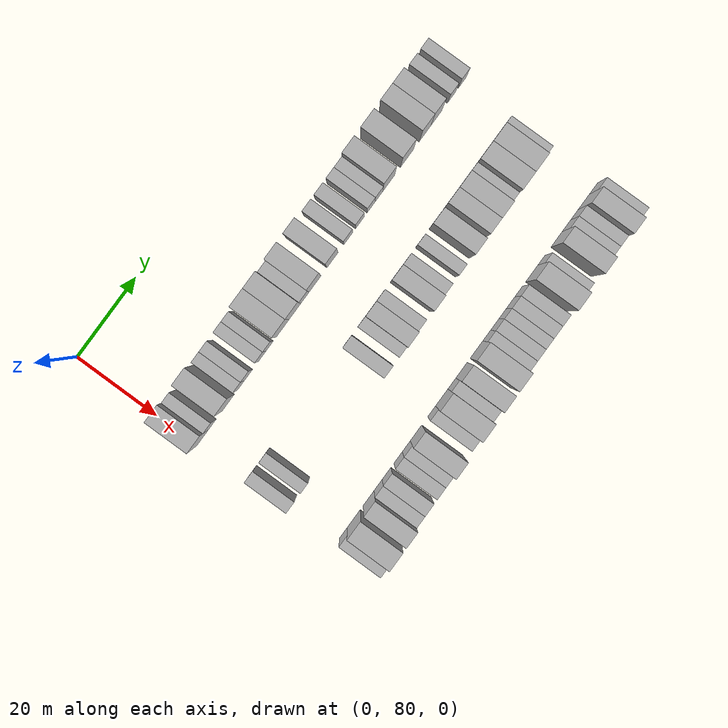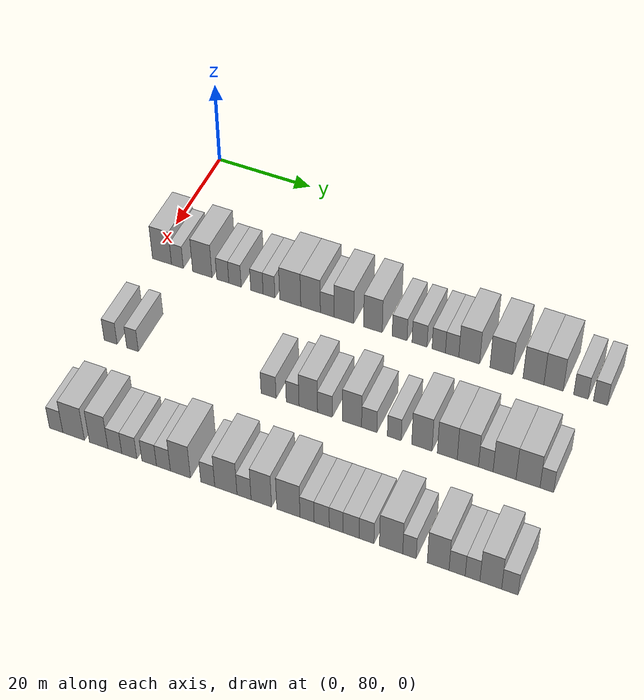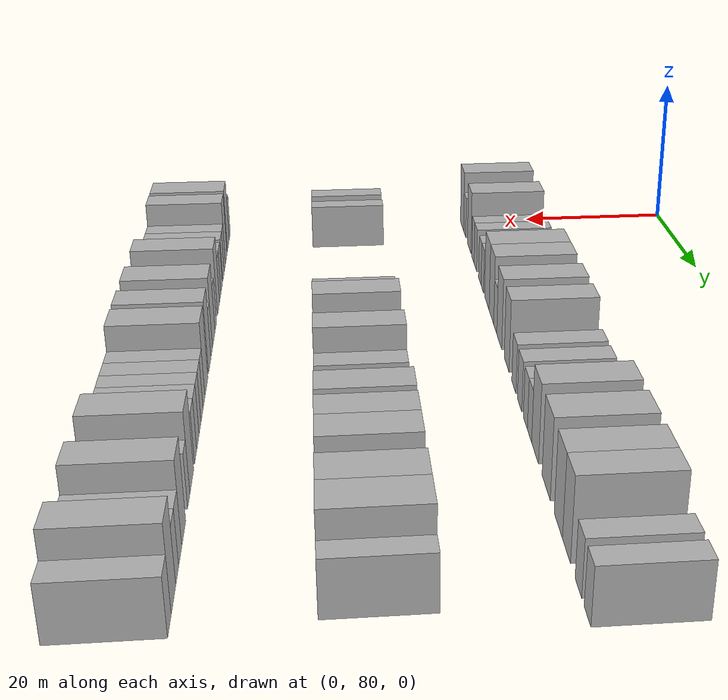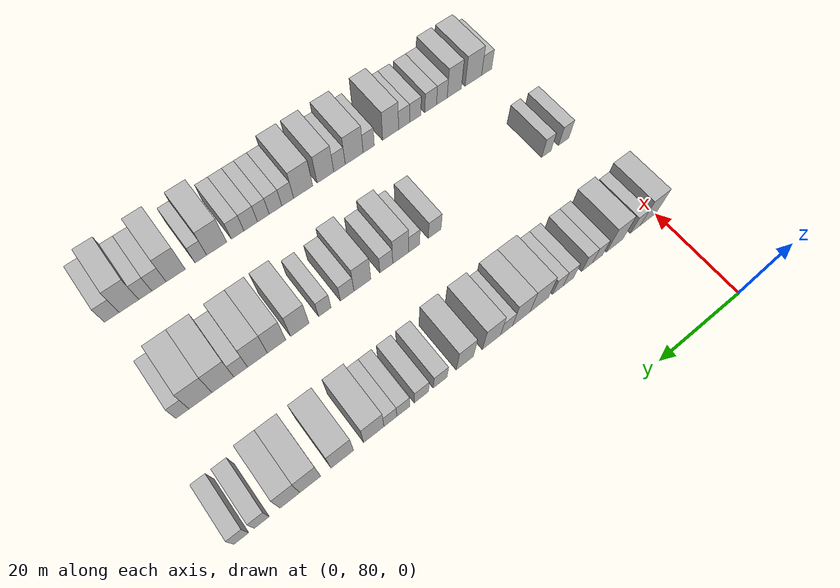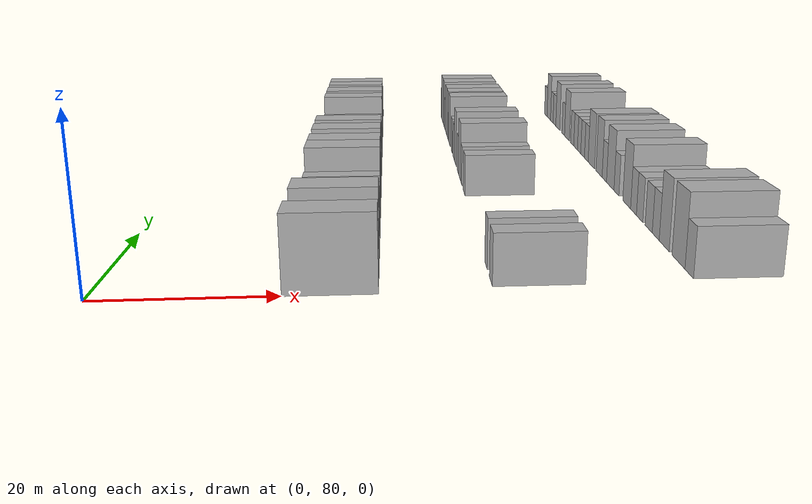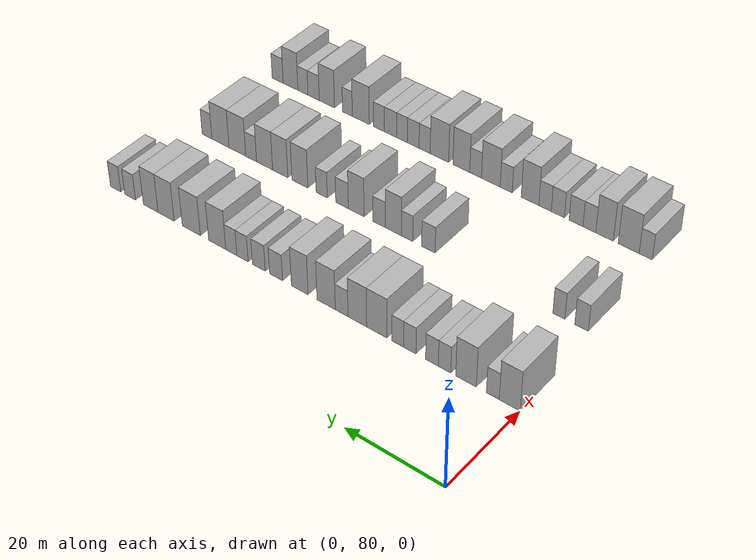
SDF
<sdf version="1.6">
 <world name="default">
  <model name="building_87">
   <static>1</static>
   <pose>25.0000 81.9876 0 0.000000 0.000000 0.000000</pose>
   <link name="link">
    <pose>0 0 4.50 0 0 0</pose>
    <collision name="collision"><geometry><box><size>10.0000 4.1131 9.0000</size></box></geometry></collision>
    <visual name="visual">
     <cast_shadows>0</cast_shadows>
     <geometry><box><size>10.0000 4.1131 9.0000</size></box></geometry>
     <material>
      <script>
       <uri>model://HANNAS_wall/materials/scripts</uri>
       <uri>model://HANNAS_wall/materials/textures</uri>
       <name>vrc/HANNAS_wall</name>
      </script>
     </material>
    </visual>
   </link>
  </model>
  <model name="building_88">
   <static>1</static>
   <pose>25.0000 85.3136 0 0.000000 0.000000 0.000000</pose>
   <link name="link">
    <pose>0 0 3.00 0 0 0</pose>
    <collision name="collision"><geometry><box><size>10.0000 2.5389 6.0000</size></box></geometry></collision>
    <visual name="visual">
     <cast_shadows>0</cast_shadows>
     <geometry><box><size>10.0000 2.5389 6.0000</size></box></geometry>
     <material>
      <script>
       <uri>model://HANNAS_wall/materials/scripts</uri>
       <uri>model://HANNAS_wall/materials/textures</uri>
       <name>vrc/HANNAS_wall</name>
      </script>
     </material>
    </visual>
   </link>
  </model>
  <model name="building_89">
   <static>1</static>
   <pose>25.0000 90.6609 0 0.000000 0.000000 0.000000</pose>
   <link name="link">
    <pose>0 0 4.50 0 0 0</pose>
    <collision name="collision"><geometry><box><size>10.0000 4.1556 9.0000</size></box></geometry></collision>
    <visual name="visual">
     <cast_shadows>0</cast_shadows>
     <geometry><box><size>10.0000 4.1556 9.0000</size></box></geometry>
     <material>
      <script>
       <uri>model://HANNAS_wall/materials/scripts</uri>
       <uri>model://HANNAS_wall/materials/textures</uri>
       <name>vrc/HANNAS_wall</name>
      </script>
     </material>
    </visual>
   </link>
  </model>
  <model name="building_90">
   <static>1</static>
   <pose>25.0000 95.0164 0 0.000000 0.000000 0.000000</pose>
   <link name="link">
    <pose>0 0 3.00 0 0 0</pose>
    <collision name="collision"><geometry><box><size>10.0000 2.5554 6.0000</size></box></geometry></collision>
    <visual name="visual">
     <cast_shadows>0</cast_shadows>
     <geometry><box><size>10.0000 2.5554 6.0000</size></box></geometry>
     <material>
      <script>
       <uri>model://HANNAS_wall/materials/scripts</uri>
       <uri>model://HANNAS_wall/materials/textures</uri>
       <name>vrc/HANNAS_wall</name>
      </script>
     </material>
    </visual>
   </link>
  </model>
  <model name="building_91">
   <static>1</static>
   <pose>25.0000 97.6028 0 0.000000 0.000000 0.000000</pose>
   <link name="link">
    <pose>0 0 3.00 0 0 0</pose>
    <collision name="collision"><geometry><box><size>10.0000 2.6174 6.0000</size></box></geometry></collision>
    <visual name="visual">
     <cast_shadows>0</cast_shadows>
     <geometry><box><size>10.0000 2.6174 6.0000</size></box></geometry>
     <material>
      <script>
       <uri>model://HANNAS_wall/materials/scripts</uri>
       <uri>model://HANNAS_wall/materials/textures</uri>
       <name>vrc/HANNAS_wall</name>
      </script>
     </material>
    </visual>
   </link>
  </model>
  <model name="building_92">
   <static>1</static>
   <pose>25.0000 102.2139 0 0.000000 0.000000 0.000000</pose>
   <link name="link">
    <pose>0 0 3.00 0 0 0</pose>
    <collision name="collision"><geometry><box><size>10.0000 2.6048 6.0000</size></box></geometry></collision>
    <visual name="visual">
     <cast_shadows>0</cast_shadows>
     <geometry><box><size>10.0000 2.6048 6.0000</size></box></geometry>
     <material>
      <script>
       <uri>model://HANNAS_wall/materials/scripts</uri>
       <uri>model://HANNAS_wall/materials/textures</uri>
       <name>vrc/HANNAS_wall</name>
      </script>
     </material>
    </visual>
   </link>
  </model>
  <model name="building_93">
   <static>1</static>
   <pose>25.0000 104.7517 0 0.000000 0.000000 0.000000</pose>
   <link name="link">
    <pose>0 0 3.00 0 0 0</pose>
    <collision name="collision"><geometry><box><size>10.0000 2.4708 6.0000</size></box></geometry></collision>
    <visual name="visual">
     <cast_shadows>0</cast_shadows>
     <geometry><box><size>10.0000 2.4708 6.0000</size></box></geometry>
     <material>
      <script>
       <uri>model://HANNAS_wall/materials/scripts</uri>
       <uri>model://HANNAS_wall/materials/textures</uri>
       <name>vrc/HANNAS_wall</name>
      </script>
     </material>
    </visual>
   </link>
  </model>
  <model name="building_94">
   <static>1</static>
   <pose>25.0000 109.1698 0 0.000000 0.000000 0.000000</pose>
   <link name="link">
    <pose>0 0 4.50 0 0 0</pose>
    <collision name="collision"><geometry><box><size>10.0000 4.3656 9.0000</size></box></geometry></collision>
    <visual name="visual">
     <cast_shadows>0</cast_shadows>
     <geometry><box><size>10.0000 4.3656 9.0000</size></box></geometry>
     <material>
      <script>
       <uri>model://HANNAS_wall/materials/scripts</uri>
       <uri>model://HANNAS_wall/materials/textures</uri>
       <name>vrc/HANNAS_wall</name>
      </script>
     </material>
    </visual>
   </link>
  </model>
  <model name="building_95">
   <static>1</static>
   <pose>25.0000 113.3726 0 0.000000 0.000000 0.000000</pose>
   <link name="link">
    <pose>0 0 4.50 0 0 0</pose>
    <collision name="collision"><geometry><box><size>10.0000 4.0399 9.0000</size></box></geometry></collision>
    <visual name="visual">
     <cast_shadows>0</cast_shadows>
     <geometry><box><size>10.0000 4.0399 9.0000</size></box></geometry>
     <material>
      <script>
       <uri>model://HANNAS_wall/materials/scripts</uri>
       <uri>model://HANNAS_wall/materials/textures</uri>
       <name>vrc/HANNAS_wall</name>
      </script>
     </material>
    </visual>
   </link>
  </model>
  <model name="building_96">
   <static>1</static>
   <pose>25.0000 116.7784 0 0.000000 0.000000 0.000000</pose>
   <link name="link">
    <pose>0 0 3.00 0 0 0</pose>
    <collision name="collision"><geometry><box><size>10.0000 2.7718 6.0000</size></box></geometry></collision>
    <visual name="visual">
     <cast_shadows>0</cast_shadows>
     <geometry><box><size>10.0000 2.7718 6.0000</size></box></geometry>
     <material>
      <script>
       <uri>model://HANNAS_wall/materials/scripts</uri>
       <uri>model://HANNAS_wall/materials/textures</uri>
       <name>vrc/HANNAS_wall</name>
      </script>
     </material>
    </visual>
   </link>
  </model>
  <model name="building_97">
   <static>1</static>
   <pose>25.0000 120.1962 0 0.000000 0.000000 0.000000</pose>
   <link name="link">
    <pose>0 0 4.50 0 0 0</pose>
    <collision name="collision"><geometry><box><size>10.0000 4.0636 9.0000</size></box></geometry></collision>
    <visual name="visual">
     <cast_shadows>0</cast_shadows>
     <geometry><box><size>10.0000 4.0636 9.0000</size></box></geometry>
     <material>
      <script>
       <uri>model://HANNAS_wall/materials/scripts</uri>
       <uri>model://HANNAS_wall/materials/textures</uri>
       <name>vrc/HANNAS_wall</name>
      </script>
     </material>
    </visual>
   </link>
  </model>
  <model name="building_98">
   <static>1</static>
   <pose>25.0000 126.1084 0 0.000000 0.000000 0.000000</pose>
   <link name="link">
    <pose>0 0 4.50 0 0 0</pose>
    <collision name="collision"><geometry><box><size>10.0000 3.7609 9.0000</size></box></geometry></collision>
    <visual name="visual">
     <cast_shadows>0</cast_shadows>
     <geometry><box><size>10.0000 3.7609 9.0000</size></box></geometry>
     <material>
      <script>
       <uri>model://HANNAS_wall/materials/scripts</uri>
       <uri>model://HANNAS_wall/materials/textures</uri>
       <name>vrc/HANNAS_wall</name>
      </script>
     </material>
    </visual>
   </link>
  </model>
  <model name="building_99">
   <static>1</static>
   <pose>25.0000 131.4782 0 0.000000 0.000000 0.000000</pose>
   <link name="link">
    <pose>0 0 3.00 0 0 0</pose>
    <collision name="collision"><geometry><box><size>10.0000 2.9786 6.0000</size></box></geometry></collision>
    <visual name="visual">
     <cast_shadows>0</cast_shadows>
     <geometry><box><size>10.0000 2.9786 6.0000</size></box></geometry>
     <material>
      <script>
       <uri>model://HANNAS_wall/materials/scripts</uri>
       <uri>model://HANNAS_wall/materials/textures</uri>
       <name>vrc/HANNAS_wall</name>
      </script>
     </material>
    </visual>
   </link>
  </model>
  <model name="building_100">
   <static>1</static>
   <pose>25.0000 135.4568 0 0.000000 0.000000 0.000000</pose>
   <link name="link">
    <pose>0 0 3.00 0 0 0</pose>
    <collision name="collision"><geometry><box><size>10.0000 2.9786 6.0000</size></box></geometry></collision>
    <visual name="visual">
     <cast_shadows>0</cast_shadows>
     <geometry><box><size>10.0000 2.9786 6.0000</size></box></geometry>
     <material>
      <script>
       <uri>model://HANNAS_wall/materials/scripts</uri>
       <uri>model://HANNAS_wall/materials/textures</uri>
       <name>vrc/HANNAS_wall</name>
      </script>
     </material>
    </visual>
   </link>
  </model>
  <model name="building_101">
   <static>1</static>
   <pose>25.0000 139.2723 0 0.000000 0.000000 0.000000</pose>
   <link name="link">
    <pose>0 0 3.00 0 0 0</pose>
    <collision name="collision"><geometry><box><size>10.0000 2.6524 6.0000</size></box></geometry></collision>
    <visual name="visual">
     <cast_shadows>0</cast_shadows>
     <geometry><box><size>10.0000 2.6524 6.0000</size></box></geometry>
     <material>
      <script>
       <uri>model://HANNAS_wall/materials/scripts</uri>
       <uri>model://HANNAS_wall/materials/textures</uri>
       <name>vrc/HANNAS_wall</name>
      </script>
     </material>
    </visual>
   </link>
  </model>
  <model name="building_102">
   <static>1</static>
   <pose>25.0000 141.9188 0 0.000000 0.000000 0.000000</pose>
   <link name="link">
    <pose>0 0 3.00 0 0 0</pose>
    <collision name="collision"><geometry><box><size>10.0000 2.6406 6.0000</size></box></geometry></collision>
    <visual name="visual">
     <cast_shadows>0</cast_shadows>
     <geometry><box><size>10.0000 2.6406 6.0000</size></box></geometry>
     <material>
      <script>
       <uri>model://HANNAS_wall/materials/scripts</uri>
       <uri>model://HANNAS_wall/materials/textures</uri>
       <name>vrc/HANNAS_wall</name>
      </script>
     </material>
    </visual>
   </link>
  </model>
  <model name="building_103">
   <static>1</static>
   <pose>25.0000 145.2824 0 0.000000 0.000000 0.000000</pose>
   <link name="link">
    <pose>0 0 4.50 0 0 0</pose>
    <collision name="collision"><geometry><box><size>10.0000 4.0866 9.0000</size></box></geometry></collision>
    <visual name="visual">
     <cast_shadows>0</cast_shadows>
     <geometry><box><size>10.0000 4.0866 9.0000</size></box></geometry>
     <material>
      <script>
       <uri>model://HANNAS_wall/materials/scripts</uri>
       <uri>model://HANNAS_wall/materials/textures</uri>
       <name>vrc/HANNAS_wall</name>
      </script>
     </material>
    </visual>
   </link>
  </model>
  <model name="building_104">
   <static>1</static>
   <pose>25.0000 151.5386 0 0.000000 0.000000 0.000000</pose>
   <link name="link">
    <pose>0 0 4.50 0 0 0</pose>
    <collision name="collision"><geometry><box><size>10.0000 4.4258 9.0000</size></box></geometry></collision>
    <visual name="visual">
     <cast_shadows>0</cast_shadows>
     <geometry><box><size>10.0000 4.4258 9.0000</size></box></geometry>
     <material>
      <script>
       <uri>model://HANNAS_wall/materials/scripts</uri>
       <uri>model://HANNAS_wall/materials/textures</uri>
       <name>vrc/HANNAS_wall</name>
      </script>
     </material>
    </visual>
   </link>
  </model>
  <model name="building_105">
   <static>1</static>
   <pose>25.0000 157.7581 0 0.000000 0.000000 0.000000</pose>
   <link name="link">
    <pose>0 0 4.50 0 0 0</pose>
    <collision name="collision"><geometry><box><size>10.0000 4.0133 9.0000</size></box></geometry></collision>
    <visual name="visual">
     <cast_shadows>0</cast_shadows>
     <geometry><box><size>10.0000 4.0133 9.0000</size></box></geometry>
     <material>
      <script>
       <uri>model://HANNAS_wall/materials/scripts</uri>
       <uri>model://HANNAS_wall/materials/textures</uri>
       <name>vrc/HANNAS_wall</name>
      </script>
     </material>
    </visual>
   </link>
  </model>
  <model name="building_106">
   <static>1</static>
   <pose>25.0000 161.6073 0 0.000000 0.000000 0.000000</pose>
   <link name="link">
    <pose>0 0 4.50 0 0 0</pose>
    <collision name="collision"><geometry><box><size>10.0000 3.6850 9.0000</size></box></geometry></collision>
    <visual name="visual">
     <cast_shadows>0</cast_shadows>
     <geometry><box><size>10.0000 3.6850 9.0000</size></box></geometry>
     <material>
      <script>
       <uri>model://HANNAS_wall/materials/scripts</uri>
       <uri>model://HANNAS_wall/materials/textures</uri>
       <name>vrc/HANNAS_wall</name>
      </script>
     </material>
    </visual>
   </link>
  </model>
  <model name="building_107">
   <static>1</static>
   <pose>25.0000 166.8216 0 0.000000 0.000000 0.000000</pose>
   <link name="link">
    <pose>0 0 3.00 0 0 0</pose>
    <collision name="collision"><geometry><box><size>10.0000 2.7435 6.0000</size></box></geometry></collision>
    <visual name="visual">
     <cast_shadows>0</cast_shadows>
     <geometry><box><size>10.0000 2.7435 6.0000</size></box></geometry>
     <material>
      <script>
       <uri>model://HANNAS_wall/materials/scripts</uri>
       <uri>model://HANNAS_wall/materials/textures</uri>
       <name>vrc/HANNAS_wall</name>
      </script>
     </material>
    </visual>
   </link>
  </model>
  <model name="building_108">
   <static>1</static>
   <pose>25.0000 170.5271 0 0.000000 0.000000 0.000000</pose>
   <link name="link">
    <pose>0 0 3.00 0 0 0</pose>
    <collision name="collision"><geometry><box><size>10.0000 2.6676 6.0000</size></box></geometry></collision>
    <visual name="visual">
     <cast_shadows>0</cast_shadows>
     <geometry><box><size>10.0000 2.6676 6.0000</size></box></geometry>
     <material>
      <script>
       <uri>model://HANNAS_wall/materials/scripts</uri>
       <uri>model://HANNAS_wall/materials/textures</uri>
       <name>vrc/HANNAS_wall</name>
      </script>
     </material>
    </visual>
   </link>
  </model>
  <model name="building_215">
   <static>1</static>
   <pose>47.0000 82.5131 0 0.000000 0.000000 0.000000</pose>
   <link name="link">
    <pose>0 0 3.00 0 0 0</pose>
    <collision name="collision"><geometry><box><size>10.0000 2.7169 6.0000</size></box></geometry></collision>
    <visual name="visual">
     <cast_shadows>0</cast_shadows>
     <geometry><box><size>10.0000 2.7169 6.0000</size></box></geometry>
     <material>
      <script>
       <uri>model://HANNAS_wall/materials/scripts</uri>
       <uri>model://HANNAS_wall/materials/textures</uri>
       <name>vrc/HANNAS_wall</name>
      </script>
     </material>
    </visual>
   </link>
  </model>
  <model name="building_216">
   <static>1</static>
   <pose>47.0000 87.0876 0 0.000000 0.000000 0.000000</pose>
   <link name="link">
    <pose>0 0 3.00 0 0 0</pose>
    <collision name="collision"><geometry><box><size>10.0000 2.4322 6.0000</size></box></geometry></collision>
    <visual name="visual">
     <cast_shadows>0</cast_shadows>
     <geometry><box><size>10.0000 2.4322 6.0000</size></box></geometry>
     <material>
      <script>
       <uri>model://HANNAS_wall/materials/scripts</uri>
       <uri>model://HANNAS_wall/materials/textures</uri>
       <name>vrc/HANNAS_wall</name>
      </script>
     </material>
    </visual>
   </link>
  </model>
  <model name="building_217">
   <static>1</static>
   <pose>47.0000 114.7894 0 0.000000 0.000000 0.000000</pose>
   <link name="link">
    <pose>0 0 3.00 0 0 0</pose>
    <collision name="collision"><geometry><box><size>10.0000 2.9904 6.0000</size></box></geometry></collision>
    <visual name="visual">
     <cast_shadows>0</cast_shadows>
     <geometry><box><size>10.0000 2.9904 6.0000</size></box></geometry>
     <material>
      <script>
       <uri>model://HANNAS_wall/materials/scripts</uri>
       <uri>model://HANNAS_wall/materials/textures</uri>
       <name>vrc/HANNAS_wall</name>
      </script>
     </material>
    </visual>
   </link>
  </model>
  <model name="building_218">
   <static>1</static>
   <pose>47.0000 119.5505 0 0.000000 0.000000 0.000000</pose>
   <link name="link">
    <pose>0 0 3.00 0 0 0</pose>
    <collision name="collision"><geometry><box><size>10.0000 2.5319 6.0000</size></box></geometry></collision>
    <visual name="visual">
     <cast_shadows>0</cast_shadows>
     <geometry><box><size>10.0000 2.5319 6.0000</size></box></geometry>
     <material>
      <script>
       <uri>model://HANNAS_wall/materials/scripts</uri>
       <uri>model://HANNAS_wall/materials/textures</uri>
       <name>vrc/HANNAS_wall</name>
      </script>
     </material>
    </visual>
   </link>
  </model>
  <model name="building_219">
   <static>1</static>
   <pose>47.0000 122.6334 0 0.000000 0.000000 0.000000</pose>
   <link name="link">
    <pose>0 0 4.50 0 0 0</pose>
    <collision name="collision"><geometry><box><size>10.0000 3.6338 9.0000</size></box></geometry></collision>
    <visual name="visual">
     <cast_shadows>0</cast_shadows>
     <geometry><box><size>10.0000 3.6338 9.0000</size></box></geometry>
     <material>
      <script>
       <uri>model://HANNAS_wall/materials/scripts</uri>
       <uri>model://HANNAS_wall/materials/textures</uri>
       <name>vrc/HANNAS_wall</name>
      </script>
     </material>
    </visual>
   </link>
  </model>
  <model name="building_220">
   <static>1</static>
   <pose>47.0000 125.8892 0 0.000000 0.000000 0.000000</pose>
   <link name="link">
    <pose>0 0 3.00 0 0 0</pose>
    <collision name="collision"><geometry><box><size>10.0000 2.8779 6.0000</size></box></geometry></collision>
    <visual name="visual">
     <cast_shadows>0</cast_shadows>
     <geometry><box><size>10.0000 2.8779 6.0000</size></box></geometry>
     <material>
      <script>
       <uri>model://HANNAS_wall/materials/scripts</uri>
       <uri>model://HANNAS_wall/materials/textures</uri>
       <name>vrc/HANNAS_wall</name>
      </script>
     </material>
    </visual>
   </link>
  </model>
  <model name="building_221">
   <static>1</static>
   <pose>47.0000 131.1801 0 0.000000 0.000000 0.000000</pose>
   <link name="link">
    <pose>0 0 4.50 0 0 0</pose>
    <collision name="collision"><geometry><box><size>10.0000 3.7038 9.0000</size></box></geometry></collision>
    <visual name="visual">
     <cast_shadows>0</cast_shadows>
     <geometry><box><size>10.0000 3.7038 9.0000</size></box></geometry>
     <material>
      <script>
       <uri>model://HANNAS_wall/materials/scripts</uri>
       <uri>model://HANNAS_wall/materials/textures</uri>
       <name>vrc/HANNAS_wall</name>
      </script>
     </material>
    </visual>
   </link>
  </model>
  <model name="building_222">
   <static>1</static>
   <pose>47.0000 134.5074 0 0.000000 0.000000 0.000000</pose>
   <link name="link">
    <pose>0 0 3.00 0 0 0</pose>
    <collision name="collision"><geometry><box><size>10.0000 2.9506 6.0000</size></box></geometry></collision>
    <visual name="visual">
     <cast_shadows>0</cast_shadows>
     <geometry><box><size>10.0000 2.9506 6.0000</size></box></geometry>
     <material>
      <script>
       <uri>model://HANNAS_wall/materials/scripts</uri>
       <uri>model://HANNAS_wall/materials/textures</uri>
       <name>vrc/HANNAS_wall</name>
      </script>
     </material>
    </visual>
   </link>
  </model>
  <model name="building_223">
   <static>1</static>
   <pose>47.0000 139.3117 0 0.000000 0.000000 0.000000</pose>
   <link name="link">
    <pose>0 0 3.00 0 0 0</pose>
    <collision name="collision"><geometry><box><size>10.0000 2.6580 6.0000</size></box></geometry></collision>
    <visual name="visual">
     <cast_shadows>0</cast_shadows>
     <geometry><box><size>10.0000 2.6580 6.0000</size></box></geometry>
     <material>
      <script>
       <uri>model://HANNAS_wall/materials/scripts</uri>
       <uri>model://HANNAS_wall/materials/textures</uri>
       <name>vrc/HANNAS_wall</name>
      </script>
     </material>
    </visual>
   </link>
  </model>
  <model name="building_224">
   <static>1</static>
   <pose>47.0000 144.5663 0 0.000000 0.000000 0.000000</pose>
   <link name="link">
    <pose>0 0 4.50 0 0 0</pose>
    <collision name="collision"><geometry><box><size>10.0000 3.8512 9.0000</size></box></geometry></collision>
    <visual name="visual">
     <cast_shadows>0</cast_shadows>
     <geometry><box><size>10.0000 3.8512 9.0000</size></box></geometry>
     <material>
      <script>
       <uri>model://HANNAS_wall/materials/scripts</uri>
       <uri>model://HANNAS_wall/materials/textures</uri>
       <name>vrc/HANNAS_wall</name>
      </script>
     </material>
    </visual>
   </link>
  </model>
  <model name="building_225">
   <static>1</static>
   <pose>47.0000 149.3626 0 0.000000 0.000000 0.000000</pose>
   <link name="link">
    <pose>0 0 4.50 0 0 0</pose>
    <collision name="collision"><geometry><box><size>10.0000 3.7415 9.0000</size></box></geometry></collision>
    <visual name="visual">
     <cast_shadows>0</cast_shadows>
     <geometry><box><size>10.0000 3.7415 9.0000</size></box></geometry>
     <material>
      <script>
       <uri>model://HANNAS_wall/materials/scripts</uri>
       <uri>model://HANNAS_wall/materials/textures</uri>
       <name>vrc/HANNAS_wall</name>
      </script>
     </material>
    </visual>
   </link>
  </model>
  <model name="building_226">
   <static>1</static>
   <pose>47.0000 153.2254 0 0.000000 0.000000 0.000000</pose>
   <link name="link">
    <pose>0 0 4.50 0 0 0</pose>
    <collision name="collision"><geometry><box><size>10.0000 3.9841 9.0000</size></box></geometry></collision>
    <visual name="visual">
     <cast_shadows>0</cast_shadows>
     <geometry><box><size>10.0000 3.9841 9.0000</size></box></geometry>
     <material>
      <script>
       <uri>model://HANNAS_wall/materials/scripts</uri>
       <uri>model://HANNAS_wall/materials/textures</uri>
       <name>vrc/HANNAS_wall</name>
      </script>
     </material>
    </visual>
   </link>
  </model>
  <model name="building_227">
   <static>1</static>
   <pose>47.0000 156.5682 0 0.000000 0.000000 0.000000</pose>
   <link name="link">
    <pose>0 0 3.00 0 0 0</pose>
    <collision name="collision"><geometry><box><size>10.0000 2.7016 6.0000</size></box></geometry></collision>
    <visual name="visual">
     <cast_shadows>0</cast_shadows>
     <geometry><box><size>10.0000 2.7016 6.0000</size></box></geometry>
     <material>
      <script>
       <uri>model://HANNAS_wall/materials/scripts</uri>
       <uri>model://HANNAS_wall/materials/textures</uri>
       <name>vrc/HANNAS_wall</name>
      </script>
     </material>
    </visual>
   </link>
  </model>
  <model name="building_228">
   <static>1</static>
   <pose>47.0000 160.0463 0 0.000000 0.000000 0.000000</pose>
   <link name="link">
    <pose>0 0 4.50 0 0 0</pose>
    <collision name="collision"><geometry><box><size>10.0000 4.2544 9.0000</size></box></geometry></collision>
    <visual name="visual">
     <cast_shadows>0</cast_shadows>
     <geometry><box><size>10.0000 4.2544 9.0000</size></box></geometry>
     <material>
      <script>
       <uri>model://HANNAS_wall/materials/scripts</uri>
       <uri>model://HANNAS_wall/materials/textures</uri>
       <name>vrc/HANNAS_wall</name>
      </script>
     </material>
    </visual>
   </link>
  </model>
  <model name="building_229">
   <static>1</static>
   <pose>47.0000 164.3706 0 0.000000 0.000000 0.000000</pose>
   <link name="link">
    <pose>0 0 4.50 0 0 0</pose>
    <collision name="collision"><geometry><box><size>10.0000 4.3942 9.0000</size></box></geometry></collision>
    <visual name="visual">
     <cast_shadows>0</cast_shadows>
     <geometry><box><size>10.0000 4.3942 9.0000</size></box></geometry>
     <material>
      <script>
       <uri>model://HANNAS_wall/materials/scripts</uri>
       <uri>model://HANNAS_wall/materials/textures</uri>
       <name>vrc/HANNAS_wall</name>
      </script>
     </material>
    </visual>
   </link>
  </model>
  <model name="building_230">
   <static>1</static>
   <pose>47.0000 167.8175 0 0.000000 0.000000 0.000000</pose>
   <link name="link">
    <pose>0 0 3.00 0 0 0</pose>
    <collision name="collision"><geometry><box><size>10.0000 2.4997 6.0000</size></box></geometry></collision>
    <visual name="visual">
     <cast_shadows>0</cast_shadows>
     <geometry><box><size>10.0000 2.4997 6.0000</size></box></geometry>
     <material>
      <script>
       <uri>model://HANNAS_wall/materials/scripts</uri>
       <uri>model://HANNAS_wall/materials/textures</uri>
       <name>vrc/HANNAS_wall</name>
      </script>
     </material>
    </visual>
   </link>
  </model>
  <model name="building_329">
   <static>1</static>
   <pose>69.0000 83.2852 0 0.000000 0.000000 0.000000</pose>
   <link name="link">
    <pose>0 0 3.00 0 0 0</pose>
    <collision name="collision"><geometry><box><size>10.0000 2.6985 6.0000</size></box></geometry></collision>
    <visual name="visual">
     <cast_shadows>0</cast_shadows>
     <geometry><box><size>10.0000 2.6985 6.0000</size></box></geometry>
     <material>
      <script>
       <uri>model://HANNAS_wall/materials/scripts</uri>
       <uri>model://HANNAS_wall/materials/textures</uri>
       <name>vrc/HANNAS_wall</name>
      </script>
     </material>
    </visual>
   </link>
  </model>
  <model name="building_330">
   <static>1</static>
   <pose>69.0000 86.8158 0 0.000000 0.000000 0.000000</pose>
   <link name="link">
    <pose>0 0 4.50 0 0 0</pose>
    <collision name="collision"><geometry><box><size>10.0000 4.3629 9.0000</size></box></geometry></collision>
    <visual name="visual">
     <cast_shadows>0</cast_shadows>
     <geometry><box><size>10.0000 4.3629 9.0000</size></box></geometry>
     <material>
      <script>
       <uri>model://HANNAS_wall/materials/scripts</uri>
       <uri>model://HANNAS_wall/materials/textures</uri>
       <name>vrc/HANNAS_wall</name>
      </script>
     </material>
    </visual>
   </link>
  </model>
  <model name="building_331">
   <static>1</static>
   <pose>69.0000 91.8505 0 0.000000 0.000000 0.000000</pose>
   <link name="link">
    <pose>0 0 4.50 0 0 0</pose>
    <collision name="collision"><geometry><box><size>10.0000 3.7065 9.0000</size></box></geometry></collision>
    <visual name="visual">
     <cast_shadows>0</cast_shadows>
     <geometry><box><size>10.0000 3.7065 9.0000</size></box></geometry>
     <material>
      <script>
       <uri>model://HANNAS_wall/materials/scripts</uri>
       <uri>model://HANNAS_wall/materials/textures</uri>
       <name>vrc/HANNAS_wall</name>
      </script>
     </material>
    </visual>
   </link>
  </model>
  <model name="building_332">
   <static>1</static>
   <pose>69.0000 95.0783 0 0.000000 0.000000 0.000000</pose>
   <link name="link">
    <pose>0 0 3.00 0 0 0</pose>
    <collision name="collision"><geometry><box><size>10.0000 2.7490 6.0000</size></box></geometry></collision>
    <visual name="visual">
     <cast_shadows>0</cast_shadows>
     <geometry><box><size>10.0000 2.7490 6.0000</size></box></geometry>
     <material>
      <script>
       <uri>model://HANNAS_wall/materials/scripts</uri>
       <uri>model://HANNAS_wall/materials/textures</uri>
       <name>vrc/HANNAS_wall</name>
      </script>
     </material>
    </visual>
   </link>
  </model>
  <model name="building_333">
   <static>1</static>
   <pose>69.0000 97.9441 0 0.000000 0.000000 0.000000</pose>
   <link name="link">
    <pose>0 0 3.00 0 0 0</pose>
    <collision name="collision"><geometry><box><size>10.0000 2.9828 6.0000</size></box></geometry></collision>
    <visual name="visual">
     <cast_shadows>0</cast_shadows>
     <geometry><box><size>10.0000 2.9828 6.0000</size></box></geometry>
     <material>
      <script>
       <uri>model://HANNAS_wall/materials/scripts</uri>
       <uri>model://HANNAS_wall/materials/textures</uri>
       <name>vrc/HANNAS_wall</name>
      </script>
     </material>
    </visual>
   </link>
  </model>
  <model name="building_334">
   <static>1</static>
   <pose>69.0000 101.8656 0 0.000000 0.000000 0.000000</pose>
   <link name="link">
    <pose>0 0 3.00 0 0 0</pose>
    <collision name="collision"><geometry><box><size>10.0000 2.8601 6.0000</size></box></geometry></collision>
    <visual name="visual">
     <cast_shadows>0</cast_shadows>
     <geometry><box><size>10.0000 2.8601 6.0000</size></box></geometry>
     <material>
      <script>
       <uri>model://HANNAS_wall/materials/scripts</uri>
       <uri>model://HANNAS_wall/materials/textures</uri>
       <name>vrc/HANNAS_wall</name>
      </script>
     </material>
    </visual>
   </link>
  </model>
  <model name="building_335">
   <static>1</static>
   <pose>69.0000 104.6603 0 0.000000 0.000000 0.000000</pose>
   <link name="link">
    <pose>0 0 3.00 0 0 0</pose>
    <collision name="collision"><geometry><box><size>10.0000 2.7293 6.0000</size></box></geometry></collision>
    <visual name="visual">
     <cast_shadows>0</cast_shadows>
     <geometry><box><size>10.0000 2.7293 6.0000</size></box></geometry>
     <material>
      <script>
       <uri>model://HANNAS_wall/materials/scripts</uri>
       <uri>model://HANNAS_wall/materials/textures</uri>
       <name>vrc/HANNAS_wall</name>
      </script>
     </material>
    </visual>
   </link>
  </model>
  <model name="building_336">
   <static>1</static>
   <pose>69.0000 107.9795 0 0.000000 0.000000 0.000000</pose>
   <link name="link">
    <pose>0 0 4.50 0 0 0</pose>
    <collision name="collision"><geometry><box><size>10.0000 3.9090 9.0000</size></box></geometry></collision>
    <visual name="visual">
     <cast_shadows>0</cast_shadows>
     <geometry><box><size>10.0000 3.9090 9.0000</size></box></geometry>
     <material>
      <script>
       <uri>model://HANNAS_wall/materials/scripts</uri>
       <uri>model://HANNAS_wall/materials/textures</uri>
       <name>vrc/HANNAS_wall</name>
      </script>
     </material>
    </visual>
   </link>
  </model>
  <model name="building_337">
   <static>1</static>
   <pose>69.0000 113.2841 0 0.000000 0.000000 0.000000</pose>
   <link name="link">
    <pose>0 0 3.00 0 0 0</pose>
    <collision name="collision"><geometry><box><size>10.0000 2.7004 6.0000</size></box></geometry></collision>
    <visual name="visual">
     <cast_shadows>0</cast_shadows>
     <geometry><box><size>10.0000 2.7004 6.0000</size></box></geometry>
     <material>
      <script>
       <uri>model://HANNAS_wall/materials/scripts</uri>
       <uri>model://HANNAS_wall/materials/textures</uri>
       <name>vrc/HANNAS_wall</name>
      </script>
     </material>
    </visual>
   </link>
  </model>
  <model name="building_338">
   <static>1</static>
   <pose>69.0000 116.7686 0 0.000000 0.000000 0.000000</pose>
   <link name="link">
    <pose>0 0 4.50 0 0 0</pose>
    <collision name="collision"><geometry><box><size>10.0000 4.2685 9.0000</size></box></geometry></collision>
    <visual name="visual">
     <cast_shadows>0</cast_shadows>
     <geometry><box><size>10.0000 4.2685 9.0000</size></box></geometry>
     <material>
      <script>
       <uri>model://HANNAS_wall/materials/scripts</uri>
       <uri>model://HANNAS_wall/materials/textures</uri>
       <name>vrc/HANNAS_wall</name>
      </script>
     </material>
    </visual>
   </link>
  </model>
  <model name="building_339">
   <static>1</static>
   <pose>69.0000 120.2452 0 0.000000 0.000000 0.000000</pose>
   <link name="link">
    <pose>0 0 3.00 0 0 0</pose>
    <collision name="collision"><geometry><box><size>10.0000 2.6846 6.0000</size></box></geometry></collision>
    <visual name="visual">
     <cast_shadows>0</cast_shadows>
     <geometry><box><size>10.0000 2.6846 6.0000</size></box></geometry>
     <material>
      <script>
       <uri>model://HANNAS_wall/materials/scripts</uri>
       <uri>model://HANNAS_wall/materials/textures</uri>
       <name>vrc/HANNAS_wall</name>
      </script>
     </material>
    </visual>
   </link>
  </model>
  <model name="building_340">
   <static>1</static>
   <pose>69.0000 123.5273 0 0.000000 0.000000 0.000000</pose>
   <link name="link">
    <pose>0 0 4.50 0 0 0</pose>
    <collision name="collision"><geometry><box><size>10.0000 3.8798 9.0000</size></box></geometry></collision>
    <visual name="visual">
     <cast_shadows>0</cast_shadows>
     <geometry><box><size>10.0000 3.8798 9.0000</size></box></geometry>
     <material>
      <script>
       <uri>model://HANNAS_wall/materials/scripts</uri>
       <uri>model://HANNAS_wall/materials/textures</uri>
       <name>vrc/HANNAS_wall</name>
      </script>
     </material>
    </visual>
   </link>
  </model>
  <model name="building_341">
   <static>1</static>
   <pose>69.0000 128.6416 0 0.000000 0.000000 0.000000</pose>
   <link name="link">
    <pose>0 0 4.50 0 0 0</pose>
    <collision name="collision"><geometry><box><size>10.0000 4.3488 9.0000</size></box></geometry></collision>
    <visual name="visual">
     <cast_shadows>0</cast_shadows>
     <geometry><box><size>10.0000 4.3488 9.0000</size></box></geometry>
     <material>
      <script>
       <uri>model://HANNAS_wall/materials/scripts</uri>
       <uri>model://HANNAS_wall/materials/textures</uri>
       <name>vrc/HANNAS_wall</name>
      </script>
     </material>
    </visual>
   </link>
  </model>
  <model name="building_342">
   <static>1</static>
   <pose>69.0000 132.1398 0 0.000000 0.000000 0.000000</pose>
   <link name="link">
    <pose>0 0 3.00 0 0 0</pose>
    <collision name="collision"><geometry><box><size>10.0000 2.6475 6.0000</size></box></geometry></collision>
    <visual name="visual">
     <cast_shadows>0</cast_shadows>
     <geometry><box><size>10.0000 2.6475 6.0000</size></box></geometry>
     <material>
      <script>
       <uri>model://HANNAS_wall/materials/scripts</uri>
       <uri>model://HANNAS_wall/materials/textures</uri>
       <name>vrc/HANNAS_wall</name>
      </script>
     </material>
    </visual>
   </link>
  </model>
  <model name="building_343">
   <static>1</static>
   <pose>69.0000 134.8728 0 0.000000 0.000000 0.000000</pose>
   <link name="link">
    <pose>0 0 3.00 0 0 0</pose>
    <collision name="collision"><geometry><box><size>10.0000 2.8187 6.0000</size></box></geometry></collision>
    <visual name="visual">
     <cast_shadows>0</cast_shadows>
     <geometry><box><size>10.0000 2.8187 6.0000</size></box></geometry>
     <material>
      <script>
       <uri>model://HANNAS_wall/materials/scripts</uri>
       <uri>model://HANNAS_wall/materials/textures</uri>
       <name>vrc/HANNAS_wall</name>
      </script>
     </material>
    </visual>
   </link>
  </model>
  <model name="building_344">
   <static>1</static>
   <pose>69.0000 137.5592 0 0.000000 0.000000 0.000000</pose>
   <link name="link">
    <pose>0 0 3.00 0 0 0</pose>
    <collision name="collision"><geometry><box><size>10.0000 2.5541 6.0000</size></box></geometry></collision>
    <visual name="visual">
     <cast_shadows>0</cast_shadows>
     <geometry><box><size>10.0000 2.5541 6.0000</size></box></geometry>
     <material>
      <script>
       <uri>model://HANNAS_wall/materials/scripts</uri>
       <uri>model://HANNAS_wall/materials/textures</uri>
       <name>vrc/HANNAS_wall</name>
      </script>
     </material>
    </visual>
   </link>
  </model>
  <model name="building_345">
   <static>1</static>
   <pose>69.0000 140.3211 0 0.000000 0.000000 0.000000</pose>
   <link name="link">
    <pose>0 0 3.00 0 0 0</pose>
    <collision name="collision"><geometry><box><size>10.0000 2.9695 6.0000</size></box></geometry></collision>
    <visual name="visual">
     <cast_shadows>0</cast_shadows>
     <geometry><box><size>10.0000 2.9695 6.0000</size></box></geometry>
     <material>
      <script>
       <uri>model://HANNAS_wall/materials/scripts</uri>
       <uri>model://HANNAS_wall/materials/textures</uri>
       <name>vrc/HANNAS_wall</name>
      </script>
     </material>
    </visual>
   </link>
  </model>
  <model name="building_346">
   <static>1</static>
   <pose>69.0000 143.1587 0 0.000000 0.000000 0.000000</pose>
   <link name="link">
    <pose>0 0 3.00 0 0 0</pose>
    <collision name="collision"><geometry><box><size>10.0000 2.7058 6.0000</size></box></geometry></collision>
    <visual name="visual">
     <cast_shadows>0</cast_shadows>
     <geometry><box><size>10.0000 2.7058 6.0000</size></box></geometry>
     <material>
      <script>
       <uri>model://HANNAS_wall/materials/scripts</uri>
       <uri>model://HANNAS_wall/materials/textures</uri>
       <name>vrc/HANNAS_wall</name>
      </script>
     </material>
    </visual>
   </link>
  </model>
  <model name="building_347">
   <static>1</static>
   <pose>69.0000 147.6292 0 0.000000 0.000000 0.000000</pose>
   <link name="link">
    <pose>0 0 4.50 0 0 0</pose>
    <collision name="collision"><geometry><box><size>10.0000 4.2353 9.0000</size></box></geometry></collision>
    <visual name="visual">
     <cast_shadows>0</cast_shadows>
     <geometry><box><size>10.0000 4.2353 9.0000</size></box></geometry>
     <material>
      <script>
       <uri>model://HANNAS_wall/materials/scripts</uri>
       <uri>model://HANNAS_wall/materials/textures</uri>
       <name>vrc/HANNAS_wall</name>
      </script>
     </material>
    </visual>
   </link>
  </model>
  <model name="building_348">
   <static>1</static>
   <pose>69.0000 150.9650 0 0.000000 0.000000 0.000000</pose>
   <link name="link">
    <pose>0 0 3.00 0 0 0</pose>
    <collision name="collision"><geometry><box><size>10.0000 2.4362 6.0000</size></box></geometry></collision>
    <visual name="visual">
     <cast_shadows>0</cast_shadows>
     <geometry><box><size>10.0000 2.4362 6.0000</size></box></geometry>
     <material>
      <script>
       <uri>model://HANNAS_wall/materials/scripts</uri>
       <uri>model://HANNAS_wall/materials/textures</uri>
       <name>vrc/HANNAS_wall</name>
      </script>
     </material>
    </visual>
   </link>
  </model>
  <model name="building_349">
   <static>1</static>
   <pose>69.0000 156.1354 0 0.000000 0.000000 0.000000</pose>
   <link name="link">
    <pose>0 0 4.50 0 0 0</pose>
    <collision name="collision"><geometry><box><size>10.0000 3.9047 9.0000</size></box></geometry></collision>
    <visual name="visual">
     <cast_shadows>0</cast_shadows>
     <geometry><box><size>10.0000 3.9047 9.0000</size></box></geometry>
     <material>
      <script>
       <uri>model://HANNAS_wall/materials/scripts</uri>
       <uri>model://HANNAS_wall/materials/textures</uri>
       <name>vrc/HANNAS_wall</name>
      </script>
     </material>
    </visual>
   </link>
  </model>
  <model name="building_350">
   <static>1</static>
   <pose>69.0000 159.5293 0 0.000000 0.000000 0.000000</pose>
   <link name="link">
    <pose>0 0 3.00 0 0 0</pose>
    <collision name="collision"><geometry><box><size>10.0000 2.8831 6.0000</size></box></geometry></collision>
    <visual name="visual">
     <cast_shadows>0</cast_shadows>
     <geometry><box><size>10.0000 2.8831 6.0000</size></box></geometry>
     <material>
      <script>
       <uri>model://HANNAS_wall/materials/scripts</uri>
       <uri>model://HANNAS_wall/materials/textures</uri>
       <name>vrc/HANNAS_wall</name>
      </script>
     </material>
    </visual>
   </link>
  </model>
  <model name="building_351">
   <static>1</static>
   <pose>69.0000 162.2727 0 0.000000 0.000000 0.000000</pose>
   <link name="link">
    <pose>0 0 3.00 0 0 0</pose>
    <collision name="collision"><geometry><box><size>10.0000 2.6036 6.0000</size></box></geometry></collision>
    <visual name="visual">
     <cast_shadows>0</cast_shadows>
     <geometry><box><size>10.0000 2.6036 6.0000</size></box></geometry>
     <material>
      <script>
       <uri>model://HANNAS_wall/materials/scripts</uri>
       <uri>model://HANNAS_wall/materials/textures</uri>
       <name>vrc/HANNAS_wall</name>
      </script>
     </material>
    </visual>
   </link>
  </model>
  <model name="building_352">
   <static>1</static>
   <pose>69.0000 165.4938 0 0.000000 0.000000 0.000000</pose>
   <link name="link">
    <pose>0 0 4.50 0 0 0</pose>
    <collision name="collision"><geometry><box><size>10.0000 3.8385 9.0000</size></box></geometry></collision>
    <visual name="visual">
     <cast_shadows>0</cast_shadows>
     <geometry><box><size>10.0000 3.8385 9.0000</size></box></geometry>
     <material>
      <script>
       <uri>model://HANNAS_wall/materials/scripts</uri>
       <uri>model://HANNAS_wall/materials/textures</uri>
       <name>vrc/HANNAS_wall</name>
      </script>
     </material>
    </visual>
   </link>
  </model>
  <model name="building_353">
   <static>1</static>
   <pose>69.0000 168.8526 0 0.000000 0.000000 0.000000</pose>
   <link name="link">
    <pose>0 0 3.00 0 0 0</pose>
    <collision name="collision"><geometry><box><size>10.0000 2.8792 6.0000</size></box></geometry></collision>
    <visual name="visual">
     <cast_shadows>0</cast_shadows>
     <geometry><box><size>10.0000 2.8792 6.0000</size></box></geometry>
     <material>
      <script>
       <uri>model://HANNAS_wall/materials/scripts</uri>
       <uri>model://HANNAS_wall/materials/textures</uri>
       <name>vrc/HANNAS_wall</name>
      </script>
     </material>
    </visual>
   </link>
  </model>
 </world>
</sdf>
